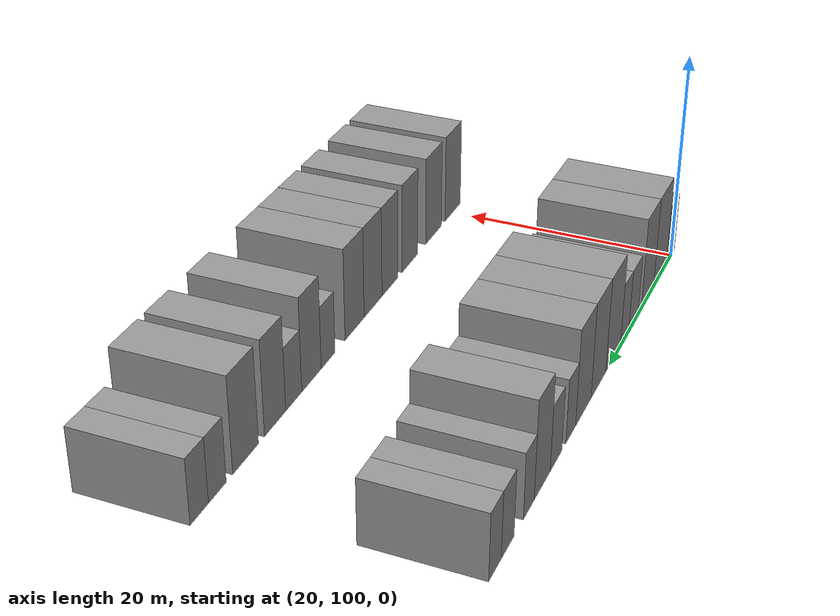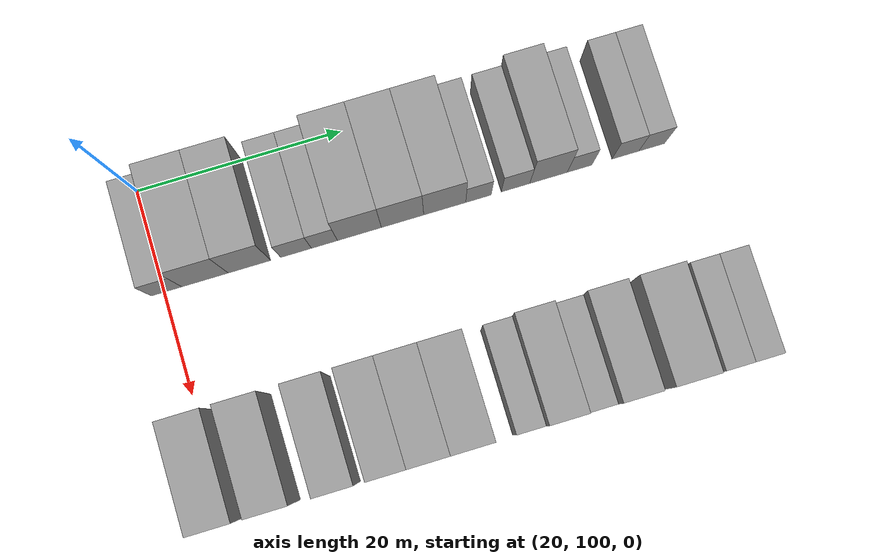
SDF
<sdf version="1.6">
 <world name="default">
  <model name="building_83">
   <static>1</static>
   <pose>25.0000 100.2314 0 0.000000 0.000000 0.000000</pose>
   <link name="link">
    <pose>0 0 3.00 0 0 0</pose>
    <collision name="collision"><geometry><box><size>10.0000 2.9443 6.0000</size></box></geometry></collision>
    <visual name="visual">
     <cast_shadows>0</cast_shadows>
     <geometry><box><size>10.0000 2.9443 6.0000</size></box></geometry>
     <material>
      <script>
       <uri>model://grey_wall/materials/scripts</uri>
       <uri>model://grey_wall/materials/textures</uri>
       <name>vrc/grey_wall</name>
      </script>
     </material>
    </visual>
   </link>
  </model>
  <model name="building_84">
   <static>1</static>
   <pose>25.0000 103.9485 0 0.000000 0.000000 0.000000</pose>
   <link name="link">
    <pose>0 0 4.50 0 0 0</pose>
    <collision name="collision"><geometry><box><size>10.0000 4.4898 9.0000</size></box></geometry></collision>
    <visual name="visual">
     <cast_shadows>0</cast_shadows>
     <geometry><box><size>10.0000 4.4898 9.0000</size></box></geometry>
     <material>
      <script>
       <uri>model://grey_wall/materials/scripts</uri>
       <uri>model://grey_wall/materials/textures</uri>
       <name>vrc/grey_wall</name>
      </script>
     </material>
    </visual>
   </link>
  </model>
  <model name="building_85">
   <static>1</static>
   <pose>25.0000 108.2435 0 0.000000 0.000000 0.000000</pose>
   <link name="link">
    <pose>0 0 4.50 0 0 0</pose>
    <collision name="collision"><geometry><box><size>10.0000 4.1002 9.0000</size></box></geometry></collision>
    <visual name="visual">
     <cast_shadows>0</cast_shadows>
     <geometry><box><size>10.0000 4.1002 9.0000</size></box></geometry>
     <material>
      <script>
       <uri>model://grey_wall/materials/scripts</uri>
       <uri>model://grey_wall/materials/textures</uri>
       <name>vrc/grey_wall</name>
      </script>
     </material>
    </visual>
   </link>
  </model>
  <model name="building_86">
   <static>1</static>
   <pose>25.0000 112.7865 0 0.000000 0.000000 0.000000</pose>
   <link name="link">
    <pose>0 0 3.00 0 0 0</pose>
    <collision name="collision"><geometry><box><size>10.0000 2.9858 6.0000</size></box></geometry></collision>
    <visual name="visual">
     <cast_shadows>0</cast_shadows>
     <geometry><box><size>10.0000 2.9858 6.0000</size></box></geometry>
     <material>
      <script>
       <uri>model://grey_wall/materials/scripts</uri>
       <uri>model://grey_wall/materials/textures</uri>
       <name>vrc/grey_wall</name>
      </script>
     </material>
    </visual>
   </link>
  </model>
  <model name="building_87">
   <static>1</static>
   <pose>25.0000 115.5462 0 0.000000 0.000000 0.000000</pose>
   <link name="link">
    <pose>0 0 3.00 0 0 0</pose>
    <collision name="collision"><geometry><box><size>10.0000 2.5335 6.0000</size></box></geometry></collision>
    <visual name="visual">
     <cast_shadows>0</cast_shadows>
     <geometry><box><size>10.0000 2.5335 6.0000</size></box></geometry>
     <material>
      <script>
       <uri>model://grey_wall/materials/scripts</uri>
       <uri>model://grey_wall/materials/textures</uri>
       <name>vrc/grey_wall</name>
      </script>
     </material>
    </visual>
   </link>
  </model>
  <model name="building_88">
   <static>1</static>
   <pose>25.0000 118.9617 0 0.000000 0.000000 0.000000</pose>
   <link name="link">
    <pose>0 0 4.50 0 0 0</pose>
    <collision name="collision"><geometry><box><size>10.0000 4.2975 9.0000</size></box></geometry></collision>
    <visual name="visual">
     <cast_shadows>0</cast_shadows>
     <geometry><box><size>10.0000 4.2975 9.0000</size></box></geometry>
     <material>
      <script>
       <uri>model://grey_wall/materials/scripts</uri>
       <uri>model://grey_wall/materials/textures</uri>
       <name>vrc/grey_wall</name>
      </script>
     </material>
    </visual>
   </link>
  </model>
  <model name="building_89">
   <static>1</static>
   <pose>25.0000 123.1814 0 0.000000 0.000000 0.000000</pose>
   <link name="link">
    <pose>0 0 4.50 0 0 0</pose>
    <collision name="collision"><geometry><box><size>10.0000 4.1420 9.0000</size></box></geometry></collision>
    <visual name="visual">
     <cast_shadows>0</cast_shadows>
     <geometry><box><size>10.0000 4.1420 9.0000</size></box></geometry>
     <material>
      <script>
       <uri>model://grey_wall/materials/scripts</uri>
       <uri>model://grey_wall/materials/textures</uri>
       <name>vrc/grey_wall</name>
      </script>
     </material>
    </visual>
   </link>
  </model>
  <model name="building_90">
   <static>1</static>
   <pose>25.0000 127.3160 0 0.000000 0.000000 0.000000</pose>
   <link name="link">
    <pose>0 0 4.50 0 0 0</pose>
    <collision name="collision"><geometry><box><size>10.0000 4.1271 9.0000</size></box></geometry></collision>
    <visual name="visual">
     <cast_shadows>0</cast_shadows>
     <geometry><box><size>10.0000 4.1271 9.0000</size></box></geometry>
     <material>
      <script>
       <uri>model://grey_wall/materials/scripts</uri>
       <uri>model://grey_wall/materials/textures</uri>
       <name>vrc/grey_wall</name>
      </script>
     </material>
    </visual>
   </link>
  </model>
  <model name="building_91">
   <static>1</static>
   <pose>25.0000 130.6345 0 0.000000 0.000000 0.000000</pose>
   <link name="link">
    <pose>0 0 3.00 0 0 0</pose>
    <collision name="collision"><geometry><box><size>10.0000 2.5099 6.0000</size></box></geometry></collision>
    <visual name="visual">
     <cast_shadows>0</cast_shadows>
     <geometry><box><size>10.0000 2.5099 6.0000</size></box></geometry>
     <material>
      <script>
       <uri>model://grey_wall/materials/scripts</uri>
       <uri>model://grey_wall/materials/textures</uri>
       <name>vrc/grey_wall</name>
      </script>
     </material>
    </visual>
   </link>
  </model>
  <model name="building_92">
   <static>1</static>
   <pose>25.0000 134.2920 0 0.000000 0.000000 0.000000</pose>
   <link name="link">
    <pose>0 0 3.00 0 0 0</pose>
    <collision name="collision"><geometry><box><size>10.0000 2.8053 6.0000</size></box></geometry></collision>
    <visual name="visual">
     <cast_shadows>0</cast_shadows>
     <geometry><box><size>10.0000 2.8053 6.0000</size></box></geometry>
     <material>
      <script>
       <uri>model://grey_wall/materials/scripts</uri>
       <uri>model://grey_wall/materials/textures</uri>
       <name>vrc/grey_wall</name>
      </script>
     </material>
    </visual>
   </link>
  </model>
  <model name="building_93">
   <static>1</static>
   <pose>25.0000 137.5602 0 0.000000 0.000000 0.000000</pose>
   <link name="link">
    <pose>0 0 4.50 0 0 0</pose>
    <collision name="collision"><geometry><box><size>10.0000 3.7310 9.0000</size></box></geometry></collision>
    <visual name="visual">
     <cast_shadows>0</cast_shadows>
     <geometry><box><size>10.0000 3.7310 9.0000</size></box></geometry>
     <material>
      <script>
       <uri>model://grey_wall/materials/scripts</uri>
       <uri>model://grey_wall/materials/textures</uri>
       <name>vrc/grey_wall</name>
      </script>
     </material>
    </visual>
   </link>
  </model>
  <model name="building_94">
   <static>1</static>
   <pose>25.0000 140.6447 0 0.000000 0.000000 0.000000</pose>
   <link name="link">
    <pose>0 0 3.00 0 0 0</pose>
    <collision name="collision"><geometry><box><size>10.0000 2.4380 6.0000</size></box></geometry></collision>
    <visual name="visual">
     <cast_shadows>0</cast_shadows>
     <geometry><box><size>10.0000 2.4380 6.0000</size></box></geometry>
     <material>
      <script>
       <uri>model://grey_wall/materials/scripts</uri>
       <uri>model://grey_wall/materials/textures</uri>
       <name>vrc/grey_wall</name>
      </script>
     </material>
    </visual>
   </link>
  </model>
  <model name="building_95">
   <static>1</static>
   <pose>25.0000 145.2001 0 0.000000 0.000000 0.000000</pose>
   <link name="link">
    <pose>0 0 3.00 0 0 0</pose>
    <collision name="collision"><geometry><box><size>10.0000 2.6729 6.0000</size></box></geometry></collision>
    <visual name="visual">
     <cast_shadows>0</cast_shadows>
     <geometry><box><size>10.0000 2.6729 6.0000</size></box></geometry>
     <material>
      <script>
       <uri>model://grey_wall/materials/scripts</uri>
       <uri>model://grey_wall/materials/textures</uri>
       <name>vrc/grey_wall</name>
      </script>
     </material>
    </visual>
   </link>
  </model>
  <model name="building_96">
   <static>1</static>
   <pose>25.0000 147.8173 0 0.000000 0.000000 0.000000</pose>
   <link name="link">
    <pose>0 0 3.00 0 0 0</pose>
    <collision name="collision"><geometry><box><size>10.0000 2.5614 6.0000</size></box></geometry></collision>
    <visual name="visual">
     <cast_shadows>0</cast_shadows>
     <geometry><box><size>10.0000 2.5614 6.0000</size></box></geometry>
     <material>
      <script>
       <uri>model://grey_wall/materials/scripts</uri>
       <uri>model://grey_wall/materials/textures</uri>
       <name>vrc/grey_wall</name>
      </script>
     </material>
    </visual>
   </link>
  </model>
  <model name="building_188">
   <static>1</static>
   <pose>47.0000 99.9639 0 0.000000 0.000000 0.000000</pose>
   <link name="link">
    <pose>0 0 4.50 0 0 0</pose>
    <collision name="collision"><geometry><box><size>10.0000 4.0510 9.0000</size></box></geometry></collision>
    <visual name="visual">
     <cast_shadows>0</cast_shadows>
     <geometry><box><size>10.0000 4.0510 9.0000</size></box></geometry>
     <material>
      <script>
       <uri>model://grey_wall/materials/scripts</uri>
       <uri>model://grey_wall/materials/textures</uri>
       <name>vrc/grey_wall</name>
      </script>
     </material>
    </visual>
   </link>
  </model>
  <model name="building_189">
   <static>1</static>
   <pose>47.0000 104.9676 0 0.000000 0.000000 0.000000</pose>
   <link name="link">
    <pose>0 0 4.50 0 0 0</pose>
    <collision name="collision"><geometry><box><size>10.0000 3.9566 9.0000</size></box></geometry></collision>
    <visual name="visual">
     <cast_shadows>0</cast_shadows>
     <geometry><box><size>10.0000 3.9566 9.0000</size></box></geometry>
     <material>
      <script>
       <uri>model://grey_wall/materials/scripts</uri>
       <uri>model://grey_wall/materials/textures</uri>
       <name>vrc/grey_wall</name>
      </script>
     </material>
    </visual>
   </link>
  </model>
  <model name="building_190">
   <static>1</static>
   <pose>47.0000 110.7946 0 0.000000 0.000000 0.000000</pose>
   <link name="link">
    <pose>0 0 4.50 0 0 0</pose>
    <collision name="collision"><geometry><box><size>10.0000 3.6973 9.0000</size></box></geometry></collision>
    <visual name="visual">
     <cast_shadows>0</cast_shadows>
     <geometry><box><size>10.0000 3.6973 9.0000</size></box></geometry>
     <material>
      <script>
       <uri>model://grey_wall/materials/scripts</uri>
       <uri>model://grey_wall/materials/textures</uri>
       <name>vrc/grey_wall</name>
      </script>
     </material>
    </visual>
   </link>
  </model>
  <model name="building_191">
   <static>1</static>
   <pose>47.0000 115.4514 0 0.000000 0.000000 0.000000</pose>
   <link name="link">
    <pose>0 0 4.50 0 0 0</pose>
    <collision name="collision"><geometry><box><size>10.0000 3.6164 9.0000</size></box></geometry></collision>
    <visual name="visual">
     <cast_shadows>0</cast_shadows>
     <geometry><box><size>10.0000 3.6164 9.0000</size></box></geometry>
     <material>
      <script>
       <uri>model://grey_wall/materials/scripts</uri>
       <uri>model://grey_wall/materials/textures</uri>
       <name>vrc/grey_wall</name>
      </script>
     </material>
    </visual>
   </link>
  </model>
  <model name="building_192">
   <static>1</static>
   <pose>47.0000 119.2091 0 0.000000 0.000000 0.000000</pose>
   <link name="link">
    <pose>0 0 4.50 0 0 0</pose>
    <collision name="collision"><geometry><box><size>10.0000 3.8989 9.0000</size></box></geometry></collision>
    <visual name="visual">
     <cast_shadows>0</cast_shadows>
     <geometry><box><size>10.0000 3.8989 9.0000</size></box></geometry>
     <material>
      <script>
       <uri>model://grey_wall/materials/scripts</uri>
       <uri>model://grey_wall/materials/textures</uri>
       <name>vrc/grey_wall</name>
      </script>
     </material>
    </visual>
   </link>
  </model>
  <model name="building_193">
   <static>1</static>
   <pose>47.0000 123.1654 0 0.000000 0.000000 0.000000</pose>
   <link name="link">
    <pose>0 0 4.50 0 0 0</pose>
    <collision name="collision"><geometry><box><size>10.0000 4.0137 9.0000</size></box></geometry></collision>
    <visual name="visual">
     <cast_shadows>0</cast_shadows>
     <geometry><box><size>10.0000 4.0137 9.0000</size></box></geometry>
     <material>
      <script>
       <uri>model://grey_wall/materials/scripts</uri>
       <uri>model://grey_wall/materials/textures</uri>
       <name>vrc/grey_wall</name>
      </script>
     </material>
    </visual>
   </link>
  </model>
  <model name="building_194">
   <static>1</static>
   <pose>47.0000 128.5284 0 0.000000 0.000000 0.000000</pose>
   <link name="link">
    <pose>0 0 3.00 0 0 0</pose>
    <collision name="collision"><geometry><box><size>10.0000 2.7123 6.0000</size></box></geometry></collision>
    <visual name="visual">
     <cast_shadows>0</cast_shadows>
     <geometry><box><size>10.0000 2.7123 6.0000</size></box></geometry>
     <material>
      <script>
       <uri>model://grey_wall/materials/scripts</uri>
       <uri>model://grey_wall/materials/textures</uri>
       <name>vrc/grey_wall</name>
      </script>
     </material>
    </visual>
   </link>
  </model>
  <model name="building_195">
   <static>1</static>
   <pose>47.0000 131.7129 0 0.000000 0.000000 0.000000</pose>
   <link name="link">
    <pose>0 0 4.50 0 0 0</pose>
    <collision name="collision"><geometry><box><size>10.0000 3.6566 9.0000</size></box></geometry></collision>
    <visual name="visual">
     <cast_shadows>0</cast_shadows>
     <geometry><box><size>10.0000 3.6566 9.0000</size></box></geometry>
     <material>
      <script>
       <uri>model://grey_wall/materials/scripts</uri>
       <uri>model://grey_wall/materials/textures</uri>
       <name>vrc/grey_wall</name>
      </script>
     </material>
    </visual>
   </link>
  </model>
  <model name="building_196">
   <static>1</static>
   <pose>47.0000 134.9976 0 0.000000 0.000000 0.000000</pose>
   <link name="link">
    <pose>0 0 3.00 0 0 0</pose>
    <collision name="collision"><geometry><box><size>10.0000 2.9129 6.0000</size></box></geometry></collision>
    <visual name="visual">
     <cast_shadows>0</cast_shadows>
     <geometry><box><size>10.0000 2.9129 6.0000</size></box></geometry>
     <material>
      <script>
       <uri>model://grey_wall/materials/scripts</uri>
       <uri>model://grey_wall/materials/textures</uri>
       <name>vrc/grey_wall</name>
      </script>
     </material>
    </visual>
   </link>
  </model>
  <model name="building_197">
   <static>1</static>
   <pose>47.0000 138.3024 0 0.000000 0.000000 0.000000</pose>
   <link name="link">
    <pose>0 0 4.50 0 0 0</pose>
    <collision name="collision"><geometry><box><size>10.0000 3.6967 9.0000</size></box></geometry></collision>
    <visual name="visual">
     <cast_shadows>0</cast_shadows>
     <geometry><box><size>10.0000 3.6967 9.0000</size></box></geometry>
     <material>
      <script>
       <uri>model://grey_wall/materials/scripts</uri>
       <uri>model://grey_wall/materials/textures</uri>
       <name>vrc/grey_wall</name>
      </script>
     </material>
    </visual>
   </link>
  </model>
  <model name="building_198">
   <static>1</static>
   <pose>47.0000 143.2595 0 0.000000 0.000000 0.000000</pose>
   <link name="link">
    <pose>0 0 4.50 0 0 0</pose>
    <collision name="collision"><geometry><box><size>10.0000 4.2175 9.0000</size></box></geometry></collision>
    <visual name="visual">
     <cast_shadows>0</cast_shadows>
     <geometry><box><size>10.0000 4.2175 9.0000</size></box></geometry>
     <material>
      <script>
       <uri>model://grey_wall/materials/scripts</uri>
       <uri>model://grey_wall/materials/textures</uri>
       <name>vrc/grey_wall</name>
      </script>
     </material>
    </visual>
   </link>
  </model>
  <model name="building_199">
   <static>1</static>
   <pose>47.0000 147.7306 0 0.000000 0.000000 0.000000</pose>
   <link name="link">
    <pose>0 0 3.00 0 0 0</pose>
    <collision name="collision"><geometry><box><size>10.0000 2.7247 6.0000</size></box></geometry></collision>
    <visual name="visual">
     <cast_shadows>0</cast_shadows>
     <geometry><box><size>10.0000 2.7247 6.0000</size></box></geometry>
     <material>
      <script>
       <uri>model://grey_wall/materials/scripts</uri>
       <uri>model://grey_wall/materials/textures</uri>
       <name>vrc/grey_wall</name>
      </script>
     </material>
    </visual>
   </link>
  </model>
  <model name="building_200">
   <static>1</static>
   <pose>47.0000 150.4632 0 0.000000 0.000000 0.000000</pose>
   <link name="link">
    <pose>0 0 3.00 0 0 0</pose>
    <collision name="collision"><geometry><box><size>10.0000 2.7406 6.0000</size></box></geometry></collision>
    <visual name="visual">
     <cast_shadows>0</cast_shadows>
     <geometry><box><size>10.0000 2.7406 6.0000</size></box></geometry>
     <material>
      <script>
       <uri>model://grey_wall/materials/scripts</uri>
       <uri>model://grey_wall/materials/textures</uri>
       <name>vrc/grey_wall</name>
      </script>
     </material>
    </visual>
   </link>
  </model>
 </world>
</sdf>
